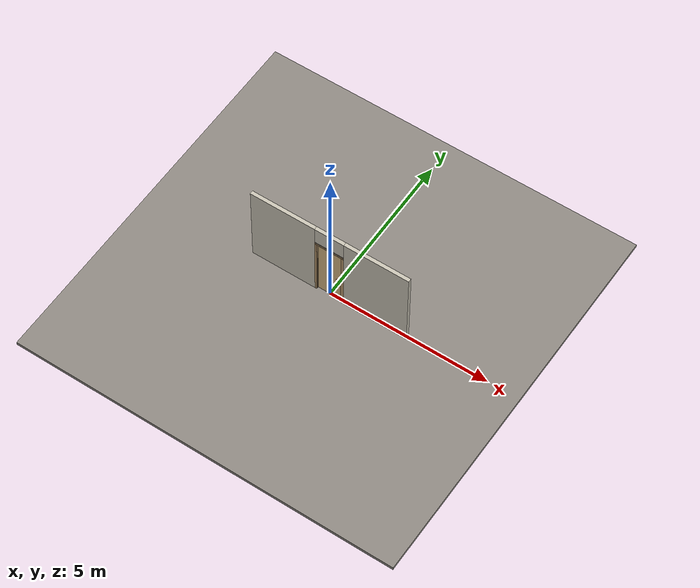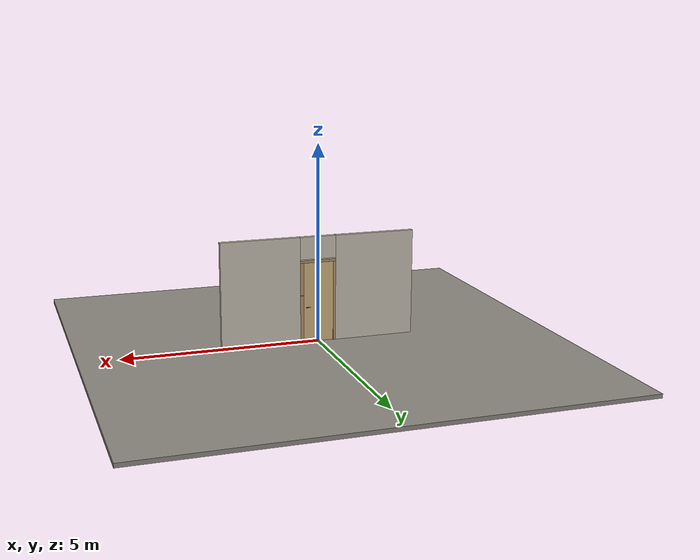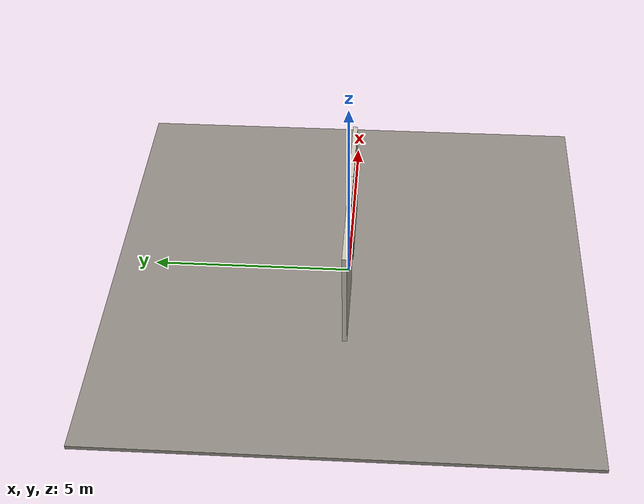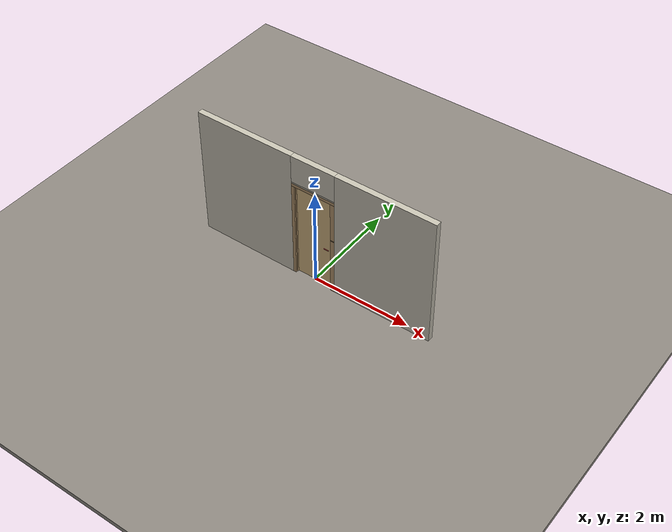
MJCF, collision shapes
<?xml version="1.0" ?>
<mujoco model="db0096_swing_single_minimal">
  <compiler angle="radian" meshdir="../../hardware" texturedir="../../textures" autolimits="true" inertiafromgeom="false"/>
  <option timestep="0.002" integrator="implicitfast" cone="elliptic" impratio="10" noslip_iterations="3">
    <flag multiccd="enable"/>
  </option>
  <size memory="16M"/>
  <default>
    <geom condim="4" solref="0.005 1" solimp="0.95 0.99 0.001"/>
    <joint solreflimit="0.005 1" solimplimit="0.95 0.99 0.001"/>
    <tendon solreflimit="0.005 1"/>
    <equality solref="0.002 1"/>
  </default>
  <visual>
    <headlight ambient="0.4 0.4 0.4" diffuse="0.7 0.7 0.7" specular="0.2 0.2 0.2"/>
    <quality shadowsize="4096"/>
    <map znear="0.01" zfar="60"/>
  </visual>
  <asset>
    <mesh name="ring_cc5c941a8a" file="ring_cc5c941a8a.obj"/>
    <material name="mat_floor" rgba="0.55 0.53 0.5 1" specular="0.2" shininess="0.15" reflectance="0"/>
    <material name="mat_wall" rgba="0.78 0.76 0.7 1" specular="0.2" shininess="0.1" reflectance="0"/>
    <material name="mat_leaf" rgba="0.82 0.7 0.5 1" specular="0.2" shininess="0.45" reflectance="0"/>
    <material name="mat_leaf_brace" rgba="0.738 0.63 0.45 1" specular="0.2" shininess="0.2" reflectance="0"/>
    <material name="mat_hinge" rgba="0.65 0.66 0.68 1" specular="0.74" shininess="0.5" reflectance="0.36"/>
    <material name="mat_op_wrought_iron" rgba="0.08 0.08 0.09 1" specular="0.56" shininess="0.25" reflectance="0.24"/>
    <material name="mat_op_brass" rgba="0.85 0.66 0.3 1" specular="0.8" shininess="0.75" reflectance="0.4"/>
    <material name="mat_frame" rgba="0.7 0.58 0.42 1" specular="0.2" shininess="0.5" reflectance="0"/>
    <material name="mat_seal" rgba="0.1 0.1 0.1 1" specular="0.2" shininess="0.1" reflectance="0"/>
    <texture name="skybox" type="skybox" builtin="gradient" rgb1="0.6 0.7 0.85" rgb2="0.9 0.92 0.95" width="256" height="256"/>
  </asset>
  <worldbody>
    <light name="sun" pos="1.5 -2.5 4" dir="-0.3 0.5 -0.8" directional="true" diffuse="0.8 0.8 0.8" specular="0.3 0.3 0.3" castshadow="true"/>
    <light name="fill" pos="-1.5 2.5 3" dir="0.3 -0.5 -0.7" directional="true" diffuse="0.35 0.35 0.4" castshadow="false"/>
    <camera name="robot_view" pos="0 -2.570688 1.734312" xyaxes="1 0 0 0 0.26963 0.962964" fovy="52"/>
    <camera name="far_view" pos="0 2.513687 1.734312" xyaxes="-1 0 0 0 -0.26963 0.962964" fovy="52"/>
    <camera name="iso" pos="1.932062 -2.163938 2.141063" xyaxes="0.741536 0.670913 0 -0.242917 0.268487 0.932151" fovy="46"/>
    <camera name="detail_handle" pos="0.455 -0.854 1.185" xyaxes="0.97561 0.219512 0 -0.070934 0.315262 0.94635" fovy="38"/>
    <geom name="floor" type="box" size="6 6 0.05" pos="0 0 -0.05" material="mat_floor" group="0" contype="1" conaffinity="1" friction="0.8 0.005 0.0001" density="2400"/>
    <geom name="wall_left" type="box" size="1.0275 0.0575 1.35" pos="-1.4725 -0.0285 1.35" material="mat_wall" group="0" contype="1" conaffinity="1" friction="0.6 0.005 0.0001" density="800"/>
    <geom name="wall_right" type="box" size="1.0125 0.0575 1.35" pos="1.4875 -0.0285 1.35" material="mat_wall" group="0" contype="1" conaffinity="1" friction="0.6 0.005 0.0001" density="800"/>
    <geom name="wall_header" type="box" size="0.46 0.0575 0.2825" pos="0.015 -0.0285 2.4175" material="mat_wall" group="0" contype="1" conaffinity="1" friction="0.6 0.005 0.0001" density="800"/>
    <geom name="jamb_hinge" type="box" size="0.03 0.0575 1.0225" pos="-0.415 -0.0285 1.0225" material="mat_frame" group="0" contype="1" conaffinity="1" friction="0.6 0.005 0.0001" density="750"/>
    <geom name="strike_1215_wall_n" type="box" size="0.045 0.022 0.01" pos="0.43 -0.064 1.215" material="mat_frame" group="0" contype="1" conaffinity="1" friction="0.6 0.005 0.0001" density="750"/>
    <geom name="strike_1215_wall_p" type="box" size="0.045 0.0275 0.01" pos="0.43 0.0015 1.215" material="mat_frame" group="0" contype="1" conaffinity="1" friction="0.6 0.005 0.0001" density="750"/>
    <geom name="strike_1215_back" type="box" size="0.024 0.008 0.01" pos="0.451 -0.034 1.215" material="mat_frame" group="0" contype="1" conaffinity="1" friction="0.6 0.005 0.0001" density="750"/>
    <geom name="jamb_strike_0" type="box" size="0.045 0.0575 0.6025" pos="0.43 -0.0285 0.6025" material="mat_frame" group="0" contype="1" conaffinity="1" friction="0.6 0.005 0.0001" density="750"/>
    <geom name="jamb_strike_1" type="box" size="0.045 0.0575 0.41" pos="0.43 -0.0285 1.635" material="mat_frame" group="0" contype="1" conaffinity="1" friction="0.6 0.005 0.0001" density="750"/>
    <geom name="jamb_head" type="box" size="0.46 0.0575 0.03" pos="0.015 -0.0285 2.075" material="mat_frame" group="0" contype="1" conaffinity="1" friction="0.6 0.005 0.0001" density="750"/>
    <geom name="head_stud" type="box" size="0.46 0.0575 0.015" pos="0.015 -0.0285 2.12" material="mat_wall" group="0" contype="1" conaffinity="1" friction="0.6 0.005 0.0001" density="500"/>
    <geom name="stop_hinge" type="box" size="0.0055 0.016 1.0225" pos="-0.3795 -0.0385 1.0225" material="mat_frame" group="0" contype="1" conaffinity="1" friction="0.6 0.005 0.0001" density="750"/>
    <geom name="stop_strike" type="box" size="0.0055 0.016 0.5965" pos="0.3795 -0.0385 0.5965" material="mat_frame" group="0" contype="1" conaffinity="1" friction="0.6 0.005 0.0001" density="750"/>
    <geom name="stop_strike_1" type="box" size="0.0055 0.016 0.404" pos="0.3795 -0.0385 1.641" material="mat_frame" group="0" contype="1" conaffinity="1" friction="0.6 0.005 0.0001" density="750"/>
    <geom name="stop_head" type="box" size="0.385 0.016 0.0055" pos="0 -0.0385 2.0395" material="mat_frame" group="0" contype="1" conaffinity="1" friction="0.6 0.005 0.0001" density="750"/>
    <site name="approach_point" pos="0 -1.5 0" quat="1 0 0 0" size="0.05" rgba="0.2 0.9 0.2 0.5" group="4"/>
    <site name="goal_point" pos="0 1.5 0" quat="1 0 0 0" size="0.05" rgba="0.2 0.9 0.2 0.5" group="4"/>
    <site name="door_plane_center" pos="0 0 1.0225" quat="1 0 0 0" size="0.02" rgba="0.2 0.9 0.2 0.5" group="4"/>
    <body name="leaf" pos="-0.385 0 0">
      <inertial pos="0.390791 0 1.023237" mass="28.409774" quat="0.50044 0.500388 0.499561 -0.499611" diaginertia="1.400209365 9.546497405 10.933427118"/>
      <joint name="leaf_hinge" type="hinge" axis="0 0 1" pos="0.003 0.029 0" limited="true" range="0 1.396263" solreflimit="0.02 1" damping="0.173726" frictionloss="1.689516" armature="0.02"/>
      <geom name="leaf_slab" type="box" size="0.381 0.022 1.016" pos="0.384 0 1.025" material="mat_leaf" group="0" contype="1" conaffinity="1" friction="0.35 0.005 0.0001" density="1"/>
      <geom name="leaf_ring_pull_n" type="mesh" mesh="ring_cc5c941a8a" pos="0.66 -0.022 0.965" quat="0.707107 0.707107 0 0" material="mat_op_wrought_iron" group="1" contype="0" conaffinity="0" density="3000"/>
      <geom name="leaf_ring_pull_col_n" type="capsule" size="0.008 0.05" pos="0.66 -0.054 0.905" quat="0.707107 0 0.707107 0" material="mat_op_wrought_iron" group="3" contype="1" conaffinity="1" rgba="0.8 0.3 0.3 0.25" friction="0.7 0.01 0.0001" density="3000"/>
      <geom name="leaf_ring_pull_p" type="mesh" mesh="ring_cc5c941a8a" pos="0.66 0.022 0.965" quat="-0.707107 0.707107 0 0" material="mat_op_wrought_iron" group="1" contype="0" conaffinity="0" density="3000"/>
      <geom name="leaf_ring_pull_col_p" type="capsule" size="0.008 0.05" pos="0.66 0.054 0.905" quat="0.707107 0 0.707107 0" material="mat_op_wrought_iron" group="3" contype="1" conaffinity="1" rgba="0.8 0.3 0.3 0.25" friction="0.7 0.01 0.0001" density="3000"/>
      <site name="leaf_ring_pull_grip_n" pos="0.66 -0.054 0.905" quat="1 0 0 0" size="0.012" rgba="0.2 0.9 0.2 0.5" group="4"/>
      <site name="leaf_ring_pull_grip_p" pos="0.66 0.054 0.905" quat="1 0 0 0" size="0.012" rgba="0.2 0.9 0.2 0.5" group="4"/>
      <site name="leaf_edge_mid" pos="0.765 0 1.016" quat="1 0 0 0" size="0.02" rgba="0.2 0.9 0.2 0.5" group="4"/>
    </body>
  </worldbody>
  <sensor>
    <jointpos name="leaf_hinge_pos" joint="leaf_hinge"/>
    <jointvel name="leaf_hinge_vel" joint="leaf_hinge"/>
  </sensor>
</mujoco>
